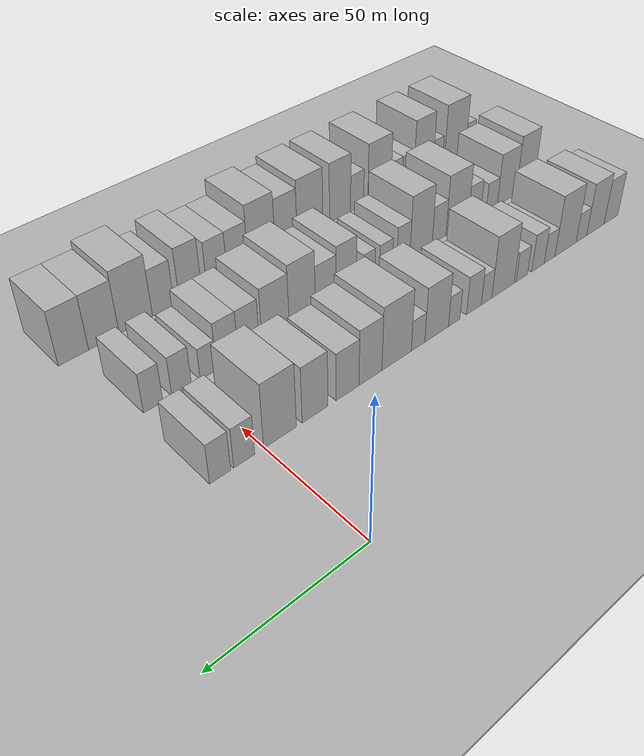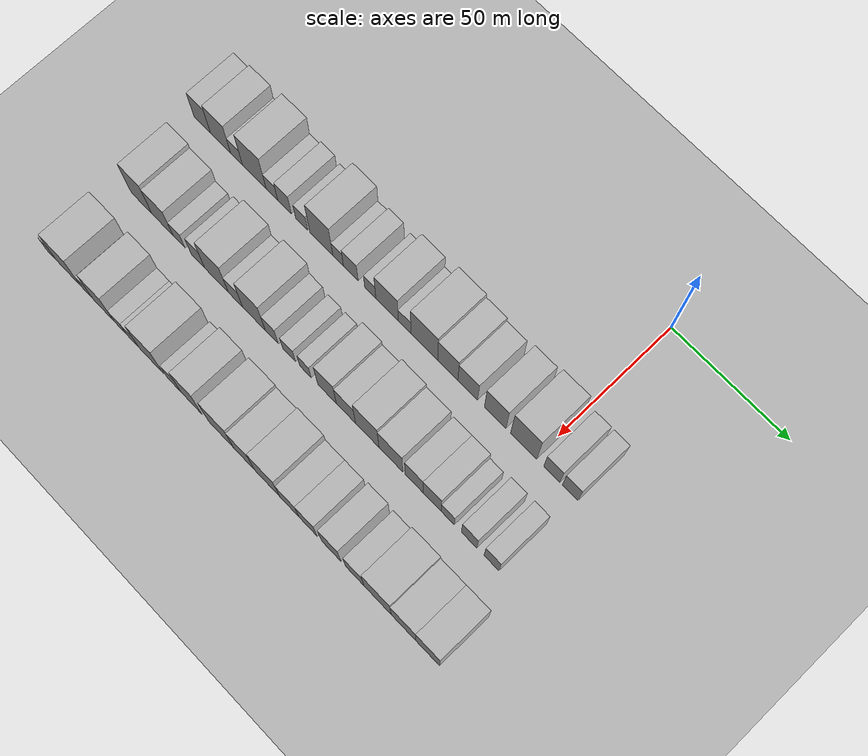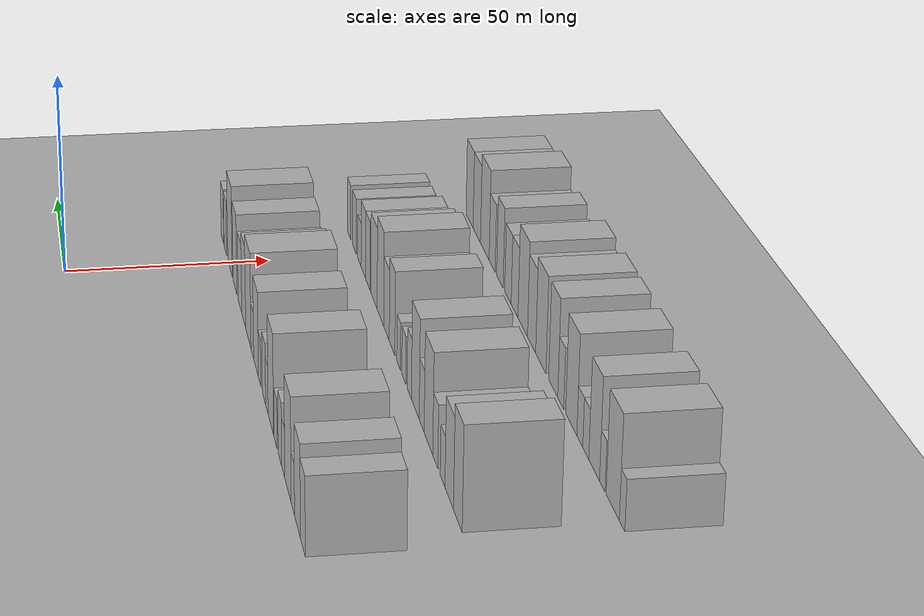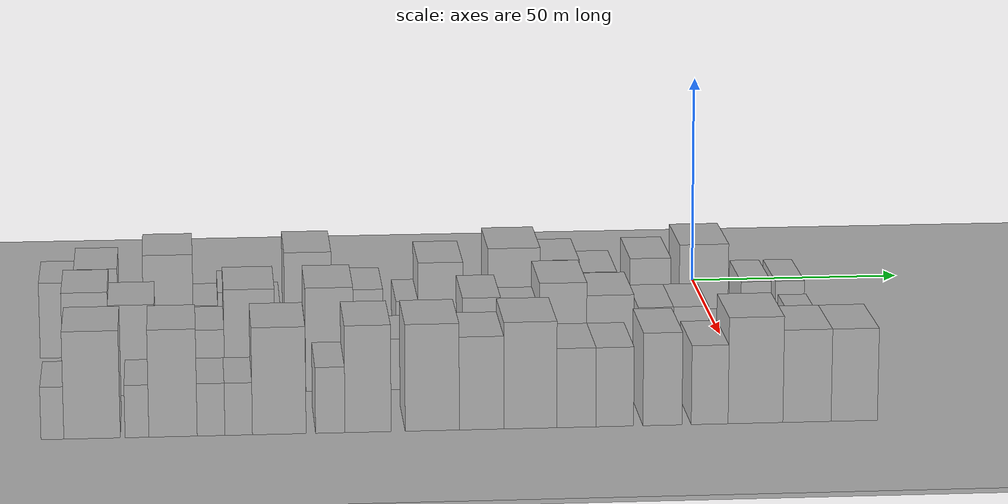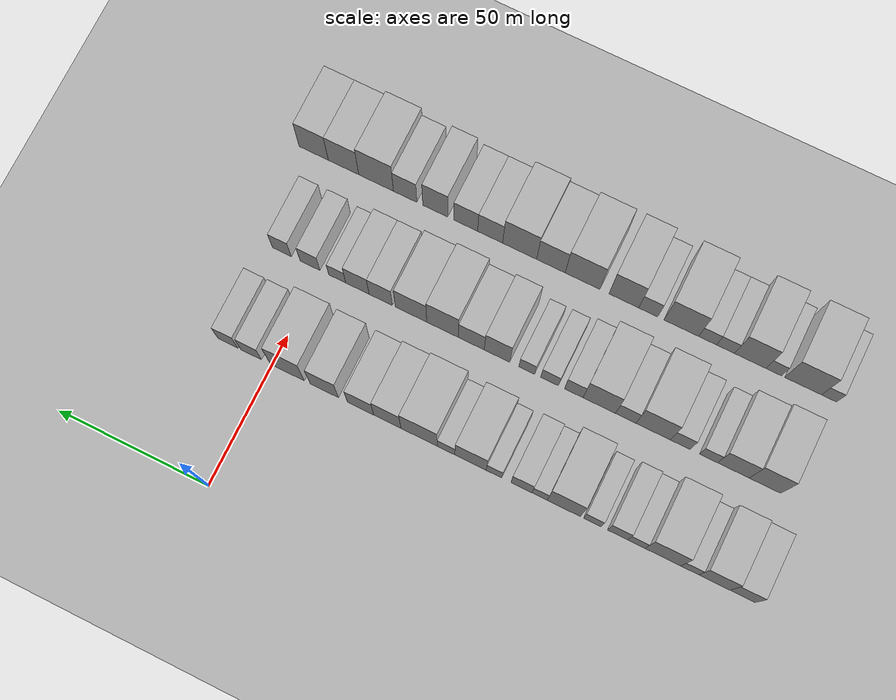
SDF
<sdf version="1.6">
 <world name="default">
  <include><name>ground_plane_1</name><uri>model://HANNAS_ground_plane</uri></include>
  <include>
   <name>ground_plane_2</name>
   <uri>model://HANNAS_ground_plane</uri>
   <pose>100 0 0  0 0 0</pose>
  </include>
  <model name="building_20">
   <static>1</static>
   <pose>50.0000 -152.5417 0 0.000000 0.000000 0.000000</pose>
   <link name="link">
    <pose>0 0 9.00 0 0 0</pose>
    <collision name="collision"><geometry><box><size>20.0000 7.9585 18.0000</size></box></geometry></collision>
    <visual name="visual">
     <cast_shadows>0</cast_shadows>
     <geometry><box><size>20.0000 7.9585 18.0000</size></box></geometry>
     <material>
      <script>
       <uri>model://HANNAS_wall/materials/scripts</uri>
       <uri>model://HANNAS_wall/materials/textures</uri>
       <name>vrc/HANNAS_wall</name>
      </script>
     </material>
    </visual>
   </link>
  </model>
  <model name="building_21">
   <static>1</static>
   <pose>50.0000 -143.6699 0 0.000000 0.000000 0.000000</pose>
   <link name="link">
    <pose>0 0 10.50 0 0 0</pose>
    <collision name="collision"><geometry><box><size>20.0000 9.7850 21.0000</size></box></geometry></collision>
    <visual name="visual">
     <cast_shadows>0</cast_shadows>
     <geometry><box><size>20.0000 9.7850 21.0000</size></box></geometry>
     <material>
      <script>
       <uri>model://HANNAS_wall/materials/scripts</uri>
       <uri>model://HANNAS_wall/materials/textures</uri>
       <name>vrc/HANNAS_wall</name>
      </script>
     </material>
    </visual>
   </link>
  </model>
  <model name="building_22">
   <static>1</static>
   <pose>50.0000 -135.9122 0 0.000000 0.000000 0.000000</pose>
   <link name="link">
    <pose>0 0 6.00 0 0 0</pose>
    <collision name="collision"><geometry><box><size>20.0000 5.7304 12.0000</size></box></geometry></collision>
    <visual name="visual">
     <cast_shadows>0</cast_shadows>
     <geometry><box><size>20.0000 5.7304 12.0000</size></box></geometry>
     <material>
      <script>
       <uri>model://HANNAS_wall/materials/scripts</uri>
       <uri>model://HANNAS_wall/materials/textures</uri>
       <name>vrc/HANNAS_wall</name>
      </script>
     </material>
    </visual>
   </link>
  </model>
  <model name="building_23">
   <static>1</static>
   <pose>50.0000 -127.4148 0 0.000000 0.000000 0.000000</pose>
   <link name="link">
    <pose>0 0 12.00 0 0 0</pose>
    <collision name="collision"><geometry><box><size>20.0000 11.2644 24.0000</size></box></geometry></collision>
    <visual name="visual">
     <cast_shadows>0</cast_shadows>
     <geometry><box><size>20.0000 11.2644 24.0000</size></box></geometry>
     <material>
      <script>
       <uri>model://HANNAS_wall/materials/scripts</uri>
       <uri>model://HANNAS_wall/materials/textures</uri>
       <name>vrc/HANNAS_wall</name>
      </script>
     </material>
    </visual>
   </link>
  </model>
  <model name="building_24">
   <static>1</static>
   <pose>50.0000 -118.9995 0 0.000000 0.000000 0.000000</pose>
   <link name="link">
    <pose>0 0 6.00 0 0 0</pose>
    <collision name="collision"><geometry><box><size>20.0000 5.5662 12.0000</size></box></geometry></collision>
    <visual name="visual">
     <cast_shadows>0</cast_shadows>
     <geometry><box><size>20.0000 5.5662 12.0000</size></box></geometry>
     <material>
      <script>
       <uri>model://HANNAS_wall/materials/scripts</uri>
       <uri>model://HANNAS_wall/materials/textures</uri>
       <name>vrc/HANNAS_wall</name>
      </script>
     </material>
    </visual>
   </link>
  </model>
  <model name="building_25">
   <static>1</static>
   <pose>50.0000 -112.9976 0 0.000000 0.000000 0.000000</pose>
   <link name="link">
    <pose>0 0 7.50 0 0 0</pose>
    <collision name="collision"><geometry><box><size>20.0000 6.4377 15.0000</size></box></geometry></collision>
    <visual name="visual">
     <cast_shadows>0</cast_shadows>
     <geometry><box><size>20.0000 6.4377 15.0000</size></box></geometry>
     <material>
      <script>
       <uri>model://HANNAS_wall/materials/scripts</uri>
       <uri>model://HANNAS_wall/materials/textures</uri>
       <name>vrc/HANNAS_wall</name>
      </script>
     </material>
    </visual>
   </link>
  </model>
  <model name="building_26">
   <static>1</static>
   <pose>50.0000 -104.9338 0 0.000000 0.000000 0.000000</pose>
   <link name="link">
    <pose>0 0 6.00 0 0 0</pose>
    <collision name="collision"><geometry><box><size>20.0000 5.6898 12.0000</size></box></geometry></collision>
    <visual name="visual">
     <cast_shadows>0</cast_shadows>
     <geometry><box><size>20.0000 5.6898 12.0000</size></box></geometry>
     <material>
      <script>
       <uri>model://HANNAS_wall/materials/scripts</uri>
       <uri>model://HANNAS_wall/materials/textures</uri>
       <name>vrc/HANNAS_wall</name>
      </script>
     </material>
    </visual>
   </link>
  </model>
  <model name="building_27">
   <static>1</static>
   <pose>50.0000 -95.7487 0 0.000000 0.000000 0.000000</pose>
   <link name="link">
    <pose>0 0 12.00 0 0 0</pose>
    <collision name="collision"><geometry><box><size>20.0000 10.6804 24.0000</size></box></geometry></collision>
    <visual name="visual">
     <cast_shadows>0</cast_shadows>
     <geometry><box><size>20.0000 10.6804 24.0000</size></box></geometry>
     <material>
      <script>
       <uri>model://HANNAS_wall/materials/scripts</uri>
       <uri>model://HANNAS_wall/materials/textures</uri>
       <name>vrc/HANNAS_wall</name>
      </script>
     </material>
    </visual>
   </link>
  </model>
  <model name="building_28">
   <static>1</static>
   <pose>50.0000 -87.9638 0 0.000000 0.000000 0.000000</pose>
   <link name="link">
    <pose>0 0 6.00 0 0 0</pose>
    <collision name="collision"><geometry><box><size>20.0000 4.8894 12.0000</size></box></geometry></collision>
    <visual name="visual">
     <cast_shadows>0</cast_shadows>
     <geometry><box><size>20.0000 4.8894 12.0000</size></box></geometry>
     <material>
      <script>
       <uri>model://HANNAS_wall/materials/scripts</uri>
       <uri>model://HANNAS_wall/materials/textures</uri>
       <name>vrc/HANNAS_wall</name>
      </script>
     </material>
    </visual>
   </link>
  </model>
  <model name="building_29">
   <static>1</static>
   <pose>50.0000 -82.1213 0 0.000000 0.000000 0.000000</pose>
   <link name="link">
    <pose>0 0 7.50 0 0 0</pose>
    <collision name="collision"><geometry><box><size>20.0000 6.7956 15.0000</size></box></geometry></collision>
    <visual name="visual">
     <cast_shadows>0</cast_shadows>
     <geometry><box><size>20.0000 6.7956 15.0000</size></box></geometry>
     <material>
      <script>
       <uri>model://HANNAS_wall/materials/scripts</uri>
       <uri>model://HANNAS_wall/materials/textures</uri>
       <name>vrc/HANNAS_wall</name>
      </script>
     </material>
    </visual>
   </link>
  </model>
  <model name="building_30">
   <static>1</static>
   <pose>50.0000 -73.1943 0 0.000000 0.000000 0.000000</pose>
   <link name="link">
    <pose>0 0 6.00 0 0 0</pose>
    <collision name="collision"><geometry><box><size>20.0000 5.0585 12.0000</size></box></geometry></collision>
    <visual name="visual">
     <cast_shadows>0</cast_shadows>
     <geometry><box><size>20.0000 5.0585 12.0000</size></box></geometry>
     <material>
      <script>
       <uri>model://HANNAS_wall/materials/scripts</uri>
       <uri>model://HANNAS_wall/materials/textures</uri>
       <name>vrc/HANNAS_wall</name>
      </script>
     </material>
    </visual>
   </link>
  </model>
  <model name="building_31">
   <static>1</static>
   <pose>50.0000 -65.5477 0 0.000000 0.000000 0.000000</pose>
   <link name="link">
    <pose>0 0 10.50 0 0 0</pose>
    <collision name="collision"><geometry><box><size>20.0000 10.2346 21.0000</size></box></geometry></collision>
    <visual name="visual">
     <cast_shadows>0</cast_shadows>
     <geometry><box><size>20.0000 10.2346 21.0000</size></box></geometry>
     <material>
      <script>
       <uri>model://HANNAS_wall/materials/scripts</uri>
       <uri>model://HANNAS_wall/materials/textures</uri>
       <name>vrc/HANNAS_wall</name>
      </script>
     </material>
    </visual>
   </link>
  </model>
  <model name="building_32">
   <static>1</static>
   <pose>50.0000 -57.5877 0 0.000000 0.000000 0.000000</pose>
   <link name="link">
    <pose>0 0 6.00 0 0 0</pose>
    <collision name="collision"><geometry><box><size>20.0000 5.6855 12.0000</size></box></geometry></collision>
    <visual name="visual">
     <cast_shadows>0</cast_shadows>
     <geometry><box><size>20.0000 5.6855 12.0000</size></box></geometry>
     <material>
      <script>
       <uri>model://HANNAS_wall/materials/scripts</uri>
       <uri>model://HANNAS_wall/materials/textures</uri>
       <name>vrc/HANNAS_wall</name>
      </script>
     </material>
    </visual>
   </link>
  </model>
  <model name="building_33">
   <static>1</static>
   <pose>50.0000 -48.7730 0 0.000000 0.000000 0.000000</pose>
   <link name="link">
    <pose>0 0 12.00 0 0 0</pose>
    <collision name="collision"><geometry><box><size>20.0000 11.9438 24.0000</size></box></geometry></collision>
    <visual name="visual">
     <cast_shadows>0</cast_shadows>
     <geometry><box><size>20.0000 11.9438 24.0000</size></box></geometry>
     <material>
      <script>
       <uri>model://HANNAS_wall/materials/scripts</uri>
       <uri>model://HANNAS_wall/materials/textures</uri>
       <name>vrc/HANNAS_wall</name>
      </script>
     </material>
    </visual>
   </link>
  </model>
  <model name="building_34">
   <static>1</static>
   <pose>50.0000 -38.3306 0 0.000000 0.000000 0.000000</pose>
   <link name="link">
    <pose>0 0 10.50 0 0 0</pose>
    <collision name="collision"><geometry><box><size>20.0000 8.9411 21.0000</size></box></geometry></collision>
    <visual name="visual">
     <cast_shadows>0</cast_shadows>
     <geometry><box><size>20.0000 8.9411 21.0000</size></box></geometry>
     <material>
      <script>
       <uri>model://HANNAS_wall/materials/scripts</uri>
       <uri>model://HANNAS_wall/materials/textures</uri>
       <name>vrc/HANNAS_wall</name>
      </script>
     </material>
    </visual>
   </link>
  </model>
  <model name="building_35">
   <static>1</static>
   <pose>50.0000 -29.5193 0 0.000000 0.000000 0.000000</pose>
   <link name="link">
    <pose>0 0 9.00 0 0 0</pose>
    <collision name="collision"><geometry><box><size>20.0000 8.6813 18.0000</size></box></geometry></collision>
    <visual name="visual">
     <cast_shadows>0</cast_shadows>
     <geometry><box><size>20.0000 8.6813 18.0000</size></box></geometry>
     <material>
      <script>
       <uri>model://HANNAS_wall/materials/scripts</uri>
       <uri>model://HANNAS_wall/materials/textures</uri>
       <name>vrc/HANNAS_wall</name>
      </script>
     </material>
    </visual>
   </link>
  </model>
  <model name="building_36">
   <static>1</static>
   <pose>50.0000 -17.4977 0 0.000000 0.000000 0.000000</pose>
   <link name="link">
    <pose>0 0 10.50 0 0 0</pose>
    <collision name="collision"><geometry><box><size>20.0000 9.3620 21.0000</size></box></geometry></collision>
    <visual name="visual">
     <cast_shadows>0</cast_shadows>
     <geometry><box><size>20.0000 9.3620 21.0000</size></box></geometry>
     <material>
      <script>
       <uri>model://HANNAS_wall/materials/scripts</uri>
       <uri>model://HANNAS_wall/materials/textures</uri>
       <name>vrc/HANNAS_wall</name>
      </script>
     </material>
    </visual>
   </link>
  </model>
  <model name="building_37">
   <static>1</static>
   <pose>50.0000 -5.1699 0 0.000000 0.000000 0.000000</pose>
   <link name="link">
    <pose>0 0 12.00 0 0 0</pose>
    <collision name="collision"><geometry><box><size>20.0000 11.2936 24.0000</size></box></geometry></collision>
    <visual name="visual">
     <cast_shadows>0</cast_shadows>
     <geometry><box><size>20.0000 11.2936 24.0000</size></box></geometry>
     <material>
      <script>
       <uri>model://HANNAS_wall/materials/scripts</uri>
       <uri>model://HANNAS_wall/materials/textures</uri>
       <name>vrc/HANNAS_wall</name>
      </script>
     </material>
    </visual>
   </link>
  </model>
  <model name="building_38">
   <static>1</static>
   <pose>50.0000 6.9233 0 0.000000 0.000000 0.000000</pose>
   <link name="link">
    <pose>0 0 7.50 0 0 0</pose>
    <collision name="collision"><geometry><box><size>20.0000 6.8927 15.0000</size></box></geometry></collision>
    <visual name="visual">
     <cast_shadows>0</cast_shadows>
     <geometry><box><size>20.0000 6.8927 15.0000</size></box></geometry>
     <material>
      <script>
       <uri>model://HANNAS_wall/materials/scripts</uri>
       <uri>model://HANNAS_wall/materials/textures</uri>
       <name>vrc/HANNAS_wall</name>
      </script>
     </material>
    </visual>
   </link>
  </model>
  <model name="building_39">
   <static>1</static>
   <pose>50.0000 14.7206 0 0.000000 0.000000 0.000000</pose>
   <link name="link">
    <pose>0 0 7.50 0 0 0</pose>
    <collision name="collision"><geometry><box><size>20.0000 6.7020 15.0000</size></box></geometry></collision>
    <visual name="visual">
     <cast_shadows>0</cast_shadows>
     <geometry><box><size>20.0000 6.7020 15.0000</size></box></geometry>
     <material>
      <script>
       <uri>model://HANNAS_wall/materials/scripts</uri>
       <uri>model://HANNAS_wall/materials/textures</uri>
       <name>vrc/HANNAS_wall</name>
      </script>
     </material>
    </visual>
   </link>
  </model>
  <model name="building_94">
   <static>1</static>
   <pose>82.0000 -145.5157 0 0.000000 0.000000 0.000000</pose>
   <link name="link">
    <pose>0 0 12.00 0 0 0</pose>
    <collision name="collision"><geometry><box><size>20.0000 10.0386 24.0000</size></box></geometry></collision>
    <visual name="visual">
     <cast_shadows>0</cast_shadows>
     <geometry><box><size>20.0000 10.0386 24.0000</size></box></geometry>
     <material>
      <script>
       <uri>model://HANNAS_wall/materials/scripts</uri>
       <uri>model://HANNAS_wall/materials/textures</uri>
       <name>vrc/HANNAS_wall</name>
      </script>
     </material>
    </visual>
   </link>
  </model>
  <model name="building_95">
   <static>1</static>
   <pose>82.0000 -135.4282 0 0.000000 0.000000 0.000000</pose>
   <link name="link">
    <pose>0 0 10.50 0 0 0</pose>
    <collision name="collision"><geometry><box><size>20.0000 10.1364 21.0000</size></box></geometry></collision>
    <visual name="visual">
     <cast_shadows>0</cast_shadows>
     <geometry><box><size>20.0000 10.1364 21.0000</size></box></geometry>
     <material>
      <script>
       <uri>model://HANNAS_wall/materials/scripts</uri>
       <uri>model://HANNAS_wall/materials/textures</uri>
       <name>vrc/HANNAS_wall</name>
      </script>
     </material>
    </visual>
   </link>
  </model>
  <model name="building_96">
   <static>1</static>
   <pose>82.0000 -127.4578 0 0.000000 0.000000 0.000000</pose>
   <link name="link">
    <pose>0 0 6.00 0 0 0</pose>
    <collision name="collision"><geometry><box><size>20.0000 5.8045 12.0000</size></box></geometry></collision>
    <visual name="visual">
     <cast_shadows>0</cast_shadows>
     <geometry><box><size>20.0000 5.8045 12.0000</size></box></geometry>
     <material>
      <script>
       <uri>model://HANNAS_wall/materials/scripts</uri>
       <uri>model://HANNAS_wall/materials/textures</uri>
       <name>vrc/HANNAS_wall</name>
      </script>
     </material>
    </visual>
   </link>
  </model>
  <model name="building_97">
   <static>1</static>
   <pose>82.0000 -118.3813 0 0.000000 0.000000 0.000000</pose>
   <link name="link">
    <pose>0 0 7.50 0 0 0</pose>
    <collision name="collision"><geometry><box><size>20.0000 6.3486 15.0000</size></box></geometry></collision>
    <visual name="visual">
     <cast_shadows>0</cast_shadows>
     <geometry><box><size>20.0000 6.3486 15.0000</size></box></geometry>
     <material>
      <script>
       <uri>model://HANNAS_wall/materials/scripts</uri>
       <uri>model://HANNAS_wall/materials/textures</uri>
       <name>vrc/HANNAS_wall</name>
      </script>
     </material>
    </visual>
   </link>
  </model>
  <model name="building_98">
   <static>1</static>
   <pose>82.0000 -109.6387 0 0.000000 0.000000 0.000000</pose>
   <link name="link">
    <pose>0 0 12.00 0 0 0</pose>
    <collision name="collision"><geometry><box><size>20.0000 11.1366 24.0000</size></box></geometry></collision>
    <visual name="visual">
     <cast_shadows>0</cast_shadows>
     <geometry><box><size>20.0000 11.1366 24.0000</size></box></geometry>
     <material>
      <script>
       <uri>model://HANNAS_wall/materials/scripts</uri>
       <uri>model://HANNAS_wall/materials/textures</uri>
       <name>vrc/HANNAS_wall</name>
      </script>
     </material>
    </visual>
   </link>
  </model>
  <model name="building_99">
   <static>1</static>
   <pose>82.0000 -100.7359 0 0.000000 0.000000 0.000000</pose>
   <link name="link">
    <pose>0 0 7.50 0 0 0</pose>
    <collision name="collision"><geometry><box><size>20.0000 6.6691 15.0000</size></box></geometry></collision>
    <visual name="visual">
     <cast_shadows>0</cast_shadows>
     <geometry><box><size>20.0000 6.6691 15.0000</size></box></geometry>
     <material>
      <script>
       <uri>model://HANNAS_wall/materials/scripts</uri>
       <uri>model://HANNAS_wall/materials/textures</uri>
       <name>vrc/HANNAS_wall</name>
      </script>
     </material>
    </visual>
   </link>
  </model>
  <model name="building_100">
   <static>1</static>
   <pose>82.0000 -92.1371 0 0.000000 0.000000 0.000000</pose>
   <link name="link">
    <pose>0 0 12.00 0 0 0</pose>
    <collision name="collision"><geometry><box><size>20.0000 10.5285 24.0000</size></box></geometry></collision>
    <visual name="visual">
     <cast_shadows>0</cast_shadows>
     <geometry><box><size>20.0000 10.5285 24.0000</size></box></geometry>
     <material>
      <script>
       <uri>model://HANNAS_wall/materials/scripts</uri>
       <uri>model://HANNAS_wall/materials/textures</uri>
       <name>vrc/HANNAS_wall</name>
      </script>
     </material>
    </visual>
   </link>
  </model>
  <model name="building_101">
   <static>1</static>
   <pose>82.0000 -83.8259 0 0.000000 0.000000 0.000000</pose>
   <link name="link">
    <pose>0 0 7.50 0 0 0</pose>
    <collision name="collision"><geometry><box><size>20.0000 6.0938 15.0000</size></box></geometry></collision>
    <visual name="visual">
     <cast_shadows>0</cast_shadows>
     <geometry><box><size>20.0000 6.0938 15.0000</size></box></geometry>
     <material>
      <script>
       <uri>model://HANNAS_wall/materials/scripts</uri>
       <uri>model://HANNAS_wall/materials/textures</uri>
       <name>vrc/HANNAS_wall</name>
      </script>
     </material>
    </visual>
   </link>
  </model>
  <model name="building_102">
   <static>1</static>
   <pose>82.0000 -75.8759 0 0.000000 0.000000 0.000000</pose>
   <link name="link">
    <pose>0 0 6.00 0 0 0</pose>
    <collision name="collision"><geometry><box><size>20.0000 5.8063 12.0000</size></box></geometry></collision>
    <visual name="visual">
     <cast_shadows>0</cast_shadows>
     <geometry><box><size>20.0000 5.8063 12.0000</size></box></geometry>
     <material>
      <script>
       <uri>model://HANNAS_wall/materials/scripts</uri>
       <uri>model://HANNAS_wall/materials/textures</uri>
       <name>vrc/HANNAS_wall</name>
      </script>
     </material>
    </visual>
   </link>
  </model>
  <model name="building_103">
   <static>1</static>
   <pose>82.0000 -68.3924 0 0.000000 0.000000 0.000000</pose>
   <link name="link">
    <pose>0 0 6.00 0 0 0</pose>
    <collision name="collision"><geometry><box><size>20.0000 5.1606 12.0000</size></box></geometry></collision>
    <visual name="visual">
     <cast_shadows>0</cast_shadows>
     <geometry><box><size>20.0000 5.1606 12.0000</size></box></geometry>
     <material>
      <script>
       <uri>model://HANNAS_wall/materials/scripts</uri>
       <uri>model://HANNAS_wall/materials/textures</uri>
       <name>vrc/HANNAS_wall</name>
      </script>
     </material>
    </visual>
   </link>
  </model>
  <model name="building_104">
   <static>1</static>
   <pose>82.0000 -58.5922 0 0.000000 0.000000 0.000000</pose>
   <link name="link">
    <pose>0 0 10.50 0 0 0</pose>
    <collision name="collision"><geometry><box><size>20.0000 8.4398 21.0000</size></box></geometry></collision>
    <visual name="visual">
     <cast_shadows>0</cast_shadows>
     <geometry><box><size>20.0000 8.4398 21.0000</size></box></geometry>
     <material>
      <script>
       <uri>model://HANNAS_wall/materials/scripts</uri>
       <uri>model://HANNAS_wall/materials/textures</uri>
       <name>vrc/HANNAS_wall</name>
      </script>
     </material>
    </visual>
   </link>
  </model>
  <model name="building_105">
   <static>1</static>
   <pose>82.0000 -50.0887 0 0.000000 0.000000 0.000000</pose>
   <link name="link">
    <pose>0 0 9.00 0 0 0</pose>
    <collision name="collision"><geometry><box><size>20.0000 8.5673 18.0000</size></box></geometry></collision>
    <visual name="visual">
     <cast_shadows>0</cast_shadows>
     <geometry><box><size>20.0000 8.5673 18.0000</size></box></geometry>
     <material>
      <script>
       <uri>model://HANNAS_wall/materials/scripts</uri>
       <uri>model://HANNAS_wall/materials/textures</uri>
       <name>vrc/HANNAS_wall</name>
      </script>
     </material>
    </visual>
   </link>
  </model>
  <model name="building_106">
   <static>1</static>
   <pose>82.0000 -40.5738 0 0.000000 0.000000 0.000000</pose>
   <link name="link">
    <pose>0 0 12.00 0 0 0</pose>
    <collision name="collision"><geometry><box><size>20.0000 10.4626 24.0000</size></box></geometry></collision>
    <visual name="visual">
     <cast_shadows>0</cast_shadows>
     <geometry><box><size>20.0000 10.4626 24.0000</size></box></geometry>
     <material>
      <script>
       <uri>model://HANNAS_wall/materials/scripts</uri>
       <uri>model://HANNAS_wall/materials/textures</uri>
       <name>vrc/HANNAS_wall</name>
      </script>
     </material>
    </visual>
   </link>
  </model>
  <model name="building_107">
   <static>1</static>
   <pose>82.0000 -30.1092 0 0.000000 0.000000 0.000000</pose>
   <link name="link">
    <pose>0 0 10.50 0 0 0</pose>
    <collision name="collision"><geometry><box><size>20.0000 10.4665 21.0000</size></box></geometry></collision>
    <visual name="visual">
     <cast_shadows>0</cast_shadows>
     <geometry><box><size>20.0000 10.4665 21.0000</size></box></geometry>
     <material>
      <script>
       <uri>model://HANNAS_wall/materials/scripts</uri>
       <uri>model://HANNAS_wall/materials/textures</uri>
       <name>vrc/HANNAS_wall</name>
      </script>
     </material>
    </visual>
   </link>
  </model>
  <model name="building_108">
   <static>1</static>
   <pose>82.0000 -19.9683 0 0.000000 0.000000 0.000000</pose>
   <link name="link">
    <pose>0 0 9.00 0 0 0</pose>
    <collision name="collision"><geometry><box><size>20.0000 7.8153 18.0000</size></box></geometry></collision>
    <visual name="visual">
     <cast_shadows>0</cast_shadows>
     <geometry><box><size>20.0000 7.8153 18.0000</size></box></geometry>
     <material>
      <script>
       <uri>model://HANNAS_wall/materials/scripts</uri>
       <uri>model://HANNAS_wall/materials/textures</uri>
       <name>vrc/HANNAS_wall</name>
      </script>
     </material>
    </visual>
   </link>
  </model>
  <model name="building_109">
   <static>1</static>
   <pose>82.0000 -12.1384 0 0.000000 0.000000 0.000000</pose>
   <link name="link">
    <pose>0 0 9.00 0 0 0</pose>
    <collision name="collision"><geometry><box><size>20.0000 7.8445 18.0000</size></box></geometry></collision>
    <visual name="visual">
     <cast_shadows>0</cast_shadows>
     <geometry><box><size>20.0000 7.8445 18.0000</size></box></geometry>
     <material>
      <script>
       <uri>model://HANNAS_wall/materials/scripts</uri>
       <uri>model://HANNAS_wall/materials/textures</uri>
       <name>vrc/HANNAS_wall</name>
      </script>
     </material>
    </visual>
   </link>
  </model>
  <model name="building_110">
   <static>1</static>
   <pose>82.0000 -5.3555 0 0.000000 0.000000 0.000000</pose>
   <link name="link">
    <pose>0 0 6.00 0 0 0</pose>
    <collision name="collision"><geometry><box><size>20.0000 5.7212 12.0000</size></box></geometry></collision>
    <visual name="visual">
     <cast_shadows>0</cast_shadows>
     <geometry><box><size>20.0000 5.7212 12.0000</size></box></geometry>
     <material>
      <script>
       <uri>model://HANNAS_wall/materials/scripts</uri>
       <uri>model://HANNAS_wall/materials/textures</uri>
       <name>vrc/HANNAS_wall</name>
      </script>
     </material>
    </visual>
   </link>
  </model>
  <model name="building_111">
   <static>1</static>
   <pose>82.0000 3.8434 0 0.000000 0.000000 0.000000</pose>
   <link name="link">
    <pose>0 0 7.50 0 0 0</pose>
    <collision name="collision"><geometry><box><size>20.0000 6.6767 15.0000</size></box></geometry></collision>
    <visual name="visual">
     <cast_shadows>0</cast_shadows>
     <geometry><box><size>20.0000 6.6767 15.0000</size></box></geometry>
     <material>
      <script>
       <uri>model://HANNAS_wall/materials/scripts</uri>
       <uri>model://HANNAS_wall/materials/textures</uri>
       <name>vrc/HANNAS_wall</name>
      </script>
     </material>
    </visual>
   </link>
  </model>
  <model name="building_112">
   <static>1</static>
   <pose>82.0000 13.3770 0 0.000000 0.000000 0.000000</pose>
   <link name="link">
    <pose>0 0 7.50 0 0 0</pose>
    <collision name="collision"><geometry><box><size>20.0000 6.3906 15.0000</size></box></geometry></collision>
    <visual name="visual">
     <cast_shadows>0</cast_shadows>
     <geometry><box><size>20.0000 6.3906 15.0000</size></box></geometry>
     <material>
      <script>
       <uri>model://HANNAS_wall/materials/scripts</uri>
       <uri>model://HANNAS_wall/materials/textures</uri>
       <name>vrc/HANNAS_wall</name>
      </script>
     </material>
    </visual>
   </link>
  </model>
  <model name="building_174">
   <static>1</static>
   <pose>114.0000 -152.0324 0 0.000000 0.000000 0.000000</pose>
   <link name="link">
    <pose>0 0 6.00 0 0 0</pose>
    <collision name="collision"><geometry><box><size>20.0000 4.8089 12.0000</size></box></geometry></collision>
    <visual name="visual">
     <cast_shadows>0</cast_shadows>
     <geometry><box><size>20.0000 4.8089 12.0000</size></box></geometry>
     <material>
      <script>
       <uri>model://HANNAS_wall/materials/scripts</uri>
       <uri>model://HANNAS_wall/materials/textures</uri>
       <name>vrc/HANNAS_wall</name>
      </script>
     </material>
    </visual>
   </link>
  </model>
  <model name="building_175">
   <static>1</static>
   <pose>114.0000 -143.6834 0 0.000000 0.000000 0.000000</pose>
   <link name="link">
    <pose>0 0 12.00 0 0 0</pose>
    <collision name="collision"><geometry><box><size>20.0000 11.8891 24.0000</size></box></geometry></collision>
    <visual name="visual">
     <cast_shadows>0</cast_shadows>
     <geometry><box><size>20.0000 11.8891 24.0000</size></box></geometry>
     <material>
      <script>
       <uri>model://HANNAS_wall/materials/scripts</uri>
       <uri>model://HANNAS_wall/materials/textures</uri>
       <name>vrc/HANNAS_wall</name>
      </script>
     </material>
    </visual>
   </link>
  </model>
  <model name="building_176">
   <static>1</static>
   <pose>114.0000 -134.2229 0 0.000000 0.000000 0.000000</pose>
   <link name="link">
    <pose>0 0 6.00 0 0 0</pose>
    <collision name="collision"><geometry><box><size>20.0000 5.0319 12.0000</size></box></geometry></collision>
    <visual name="visual">
     <cast_shadows>0</cast_shadows>
     <geometry><box><size>20.0000 5.0319 12.0000</size></box></geometry>
     <material>
      <script>
       <uri>model://HANNAS_wall/materials/scripts</uri>
       <uri>model://HANNAS_wall/materials/textures</uri>
       <name>vrc/HANNAS_wall</name>
      </script>
     </material>
    </visual>
   </link>
  </model>
  <model name="building_177">
   <static>1</static>
   <pose>114.0000 -126.6052 0 0.000000 0.000000 0.000000</pose>
   <link name="link">
    <pose>0 0 12.00 0 0 0</pose>
    <collision name="collision"><geometry><box><size>20.0000 10.2035 24.0000</size></box></geometry></collision>
    <visual name="visual">
     <cast_shadows>0</cast_shadows>
     <geometry><box><size>20.0000 10.2035 24.0000</size></box></geometry>
     <material>
      <script>
       <uri>model://HANNAS_wall/materials/scripts</uri>
       <uri>model://HANNAS_wall/materials/textures</uri>
       <name>vrc/HANNAS_wall</name>
      </script>
     </material>
    </visual>
   </link>
  </model>
  <model name="building_178">
   <static>1</static>
   <pose>114.0000 -118.5726 0 0.000000 0.000000 0.000000</pose>
   <link name="link">
    <pose>0 0 6.00 0 0 0</pose>
    <collision name="collision"><geometry><box><size>20.0000 5.8618 12.0000</size></box></geometry></collision>
    <visual name="visual">
     <cast_shadows>0</cast_shadows>
     <geometry><box><size>20.0000 5.8618 12.0000</size></box></geometry>
     <material>
      <script>
       <uri>model://HANNAS_wall/materials/scripts</uri>
       <uri>model://HANNAS_wall/materials/textures</uri>
       <name>vrc/HANNAS_wall</name>
      </script>
     </material>
    </visual>
   </link>
  </model>
  <model name="building_179">
   <static>1</static>
   <pose>114.0000 -112.7274 0 0.000000 0.000000 0.000000</pose>
   <link name="link">
    <pose>0 0 6.00 0 0 0</pose>
    <collision name="collision"><geometry><box><size>20.0000 5.8285 12.0000</size></box></geometry></collision>
    <visual name="visual">
     <cast_shadows>0</cast_shadows>
     <geometry><box><size>20.0000 5.8285 12.0000</size></box></geometry>
     <material>
      <script>
       <uri>model://HANNAS_wall/materials/scripts</uri>
       <uri>model://HANNAS_wall/materials/textures</uri>
       <name>vrc/HANNAS_wall</name>
      </script>
     </material>
    </visual>
   </link>
  </model>
  <model name="building_180">
   <static>1</static>
   <pose>114.0000 -104.1174 0 0.000000 0.000000 0.000000</pose>
   <link name="link">
    <pose>0 0 12.00 0 0 0</pose>
    <collision name="collision"><geometry><box><size>20.0000 11.3916 24.0000</size></box></geometry></collision>
    <visual name="visual">
     <cast_shadows>0</cast_shadows>
     <geometry><box><size>20.0000 11.3916 24.0000</size></box></geometry>
     <material>
      <script>
       <uri>model://HANNAS_wall/materials/scripts</uri>
       <uri>model://HANNAS_wall/materials/textures</uri>
       <name>vrc/HANNAS_wall</name>
      </script>
     </material>
    </visual>
   </link>
  </model>
  <model name="building_181">
   <static>1</static>
   <pose>114.0000 -93.2868 0 0.000000 0.000000 0.000000</pose>
   <link name="link">
    <pose>0 0 7.50 0 0 0</pose>
    <collision name="collision"><geometry><box><size>20.0000 6.2696 15.0000</size></box></geometry></collision>
    <visual name="visual">
     <cast_shadows>0</cast_shadows>
     <geometry><box><size>20.0000 6.2696 15.0000</size></box></geometry>
     <material>
      <script>
       <uri>model://HANNAS_wall/materials/scripts</uri>
       <uri>model://HANNAS_wall/materials/textures</uri>
       <name>vrc/HANNAS_wall</name>
      </script>
     </material>
    </visual>
   </link>
  </model>
  <model name="building_182">
   <static>1</static>
   <pose>114.0000 -85.2464 0 0.000000 0.000000 0.000000</pose>
   <link name="link">
    <pose>0 0 12.00 0 0 0</pose>
    <collision name="collision"><geometry><box><size>20.0000 9.8112 24.0000</size></box></geometry></collision>
    <visual name="visual">
     <cast_shadows>0</cast_shadows>
     <geometry><box><size>20.0000 9.8112 24.0000</size></box></geometry>
     <material>
      <script>
       <uri>model://HANNAS_wall/materials/scripts</uri>
       <uri>model://HANNAS_wall/materials/textures</uri>
       <name>vrc/HANNAS_wall</name>
      </script>
     </material>
    </visual>
   </link>
  </model>
  <model name="building_183">
   <static>1</static>
   <pose>114.0000 -71.5715 0 0.000000 0.000000 0.000000</pose>
   <link name="link">
    <pose>0 0 12.00 0 0 0</pose>
    <collision name="collision"><geometry><box><size>20.0000 11.5385 24.0000</size></box></geometry></collision>
    <visual name="visual">
     <cast_shadows>0</cast_shadows>
     <geometry><box><size>20.0000 11.5385 24.0000</size></box></geometry>
     <material>
      <script>
       <uri>model://HANNAS_wall/materials/scripts</uri>
       <uri>model://HANNAS_wall/materials/textures</uri>
       <name>vrc/HANNAS_wall</name>
      </script>
     </material>
    </visual>
   </link>
  </model>
  <model name="building_184">
   <static>1</static>
   <pose>114.0000 -61.0549 0 0.000000 0.000000 0.000000</pose>
   <link name="link">
    <pose>0 0 10.50 0 0 0</pose>
    <collision name="collision"><geometry><box><size>20.0000 9.4948 21.0000</size></box></geometry></collision>
    <visual name="visual">
     <cast_shadows>0</cast_shadows>
     <geometry><box><size>20.0000 9.4948 21.0000</size></box></geometry>
     <material>
      <script>
       <uri>model://HANNAS_wall/materials/scripts</uri>
       <uri>model://HANNAS_wall/materials/textures</uri>
       <name>vrc/HANNAS_wall</name>
      </script>
     </material>
    </visual>
   </link>
  </model>
  <model name="building_185">
   <static>1</static>
   <pose>114.0000 -50.6203 0 0.000000 0.000000 0.000000</pose>
   <link name="link">
    <pose>0 0 12.00 0 0 0</pose>
    <collision name="collision"><geometry><box><size>20.0000 11.3744 24.0000</size></box></geometry></collision>
    <visual name="visual">
     <cast_shadows>0</cast_shadows>
     <geometry><box><size>20.0000 11.3744 24.0000</size></box></geometry>
     <material>
      <script>
       <uri>model://HANNAS_wall/materials/scripts</uri>
       <uri>model://HANNAS_wall/materials/textures</uri>
       <name>vrc/HANNAS_wall</name>
      </script>
     </material>
    </visual>
   </link>
  </model>
  <model name="building_186">
   <static>1</static>
   <pose>114.0000 -40.7414 0 0.000000 0.000000 0.000000</pose>
   <link name="link">
    <pose>0 0 9.00 0 0 0</pose>
    <collision name="collision"><geometry><box><size>20.0000 8.3835 18.0000</size></box></geometry></collision>
    <visual name="visual">
     <cast_shadows>0</cast_shadows>
     <geometry><box><size>20.0000 8.3835 18.0000</size></box></geometry>
     <material>
      <script>
       <uri>model://HANNAS_wall/materials/scripts</uri>
       <uri>model://HANNAS_wall/materials/textures</uri>
       <name>vrc/HANNAS_wall</name>
      </script>
     </material>
    </visual>
   </link>
  </model>
  <model name="building_187">
   <static>1</static>
   <pose>114.0000 -32.4975 0 0.000000 0.000000 0.000000</pose>
   <link name="link">
    <pose>0 0 9.00 0 0 0</pose>
    <collision name="collision"><geometry><box><size>20.0000 8.1043 18.0000</size></box></geometry></collision>
    <visual name="visual">
     <cast_shadows>0</cast_shadows>
     <geometry><box><size>20.0000 8.1043 18.0000</size></box></geometry>
     <material>
      <script>
       <uri>model://HANNAS_wall/materials/scripts</uri>
       <uri>model://HANNAS_wall/materials/textures</uri>
       <name>vrc/HANNAS_wall</name>
      </script>
     </material>
    </visual>
   </link>
  </model>
  <model name="building_188">
   <static>1</static>
   <pose>114.0000 -22.2362 0 0.000000 0.000000 0.000000</pose>
   <link name="link">
    <pose>0 0 10.50 0 0 0</pose>
    <collision name="collision"><geometry><box><size>20.0000 8.4184 21.0000</size></box></geometry></collision>
    <visual name="visual">
     <cast_shadows>0</cast_shadows>
     <geometry><box><size>20.0000 8.4184 21.0000</size></box></geometry>
     <material>
      <script>
       <uri>model://HANNAS_wall/materials/scripts</uri>
       <uri>model://HANNAS_wall/materials/textures</uri>
       <name>vrc/HANNAS_wall</name>
      </script>
     </material>
    </visual>
   </link>
  </model>
  <model name="building_189">
   <static>1</static>
   <pose>114.0000 -12.0559 0 0.000000 0.000000 0.000000</pose>
   <link name="link">
    <pose>0 0 9.00 0 0 0</pose>
    <collision name="collision"><geometry><box><size>20.0000 7.9422 18.0000</size></box></geometry></collision>
    <visual name="visual">
     <cast_shadows>0</cast_shadows>
     <geometry><box><size>20.0000 7.9422 18.0000</size></box></geometry>
     <material>
      <script>
       <uri>model://HANNAS_wall/materials/scripts</uri>
       <uri>model://HANNAS_wall/materials/textures</uri>
       <name>vrc/HANNAS_wall</name>
      </script>
     </material>
    </visual>
   </link>
  </model>
  <model name="building_190">
   <static>1</static>
   <pose>114.0000 -2.1663 0 0.000000 0.000000 0.000000</pose>
   <link name="link">
    <pose>0 0 12.00 0 0 0</pose>
    <collision name="collision"><geometry><box><size>20.0000 11.8369 24.0000</size></box></geometry></collision>
    <visual name="visual">
     <cast_shadows>0</cast_shadows>
     <geometry><box><size>20.0000 11.8369 24.0000</size></box></geometry>
     <material>
      <script>
       <uri>model://HANNAS_wall/materials/scripts</uri>
       <uri>model://HANNAS_wall/materials/textures</uri>
       <name>vrc/HANNAS_wall</name>
      </script>
     </material>
    </visual>
   </link>
  </model>
  <model name="building_191">
   <static>1</static>
   <pose>114.0000 8.9699 0 0.000000 0.000000 0.000000</pose>
   <link name="link">
    <pose>0 0 10.50 0 0 0</pose>
    <collision name="collision"><geometry><box><size>20.0000 10.4354 21.0000</size></box></geometry></collision>
    <visual name="visual">
     <cast_shadows>0</cast_shadows>
     <geometry><box><size>20.0000 10.4354 21.0000</size></box></geometry>
     <material>
      <script>
       <uri>model://HANNAS_wall/materials/scripts</uri>
       <uri>model://HANNAS_wall/materials/textures</uri>
       <name>vrc/HANNAS_wall</name>
      </script>
     </material>
    </visual>
   </link>
  </model>
  <model name="building_192">
   <static>1</static>
   <pose>114.0000 19.2089 0 0.000000 0.000000 0.000000</pose>
   <link name="link">
    <pose>0 0 10.50 0 0 0</pose>
    <collision name="collision"><geometry><box><size>20.0000 10.0426 21.0000</size></box></geometry></collision>
    <visual name="visual">
     <cast_shadows>0</cast_shadows>
     <geometry><box><size>20.0000 10.0426 21.0000</size></box></geometry>
     <material>
      <script>
       <uri>model://HANNAS_wall/materials/scripts</uri>
       <uri>model://HANNAS_wall/materials/textures</uri>
       <name>vrc/HANNAS_wall</name>
      </script>
     </material>
    </visual>
   </link>
  </model>
 </world>
</sdf>
